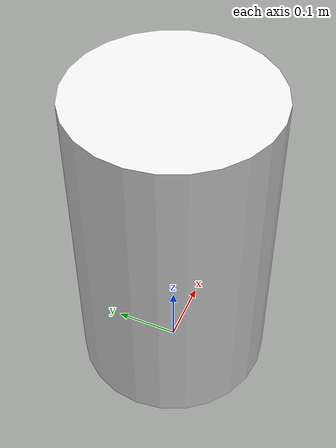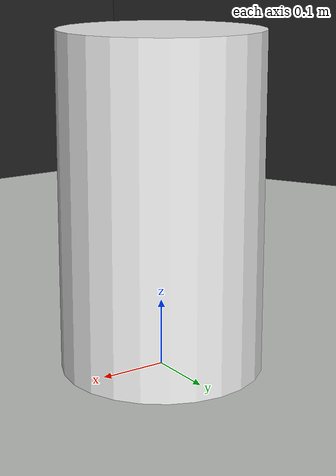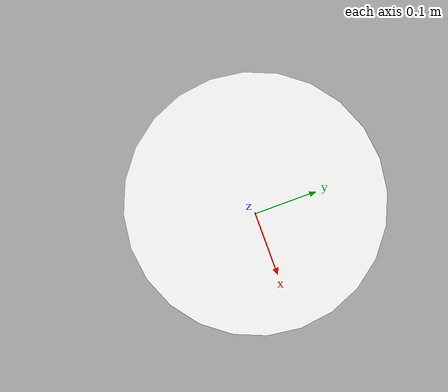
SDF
<sdf version='1.5'>
    <!-- Draw Circle -->
    <model name='ros_symbol'>
      <static>1</static>
      <link name='symbol'>

        <collision name='two_two'>
          <pose>0 0 0.25 0 0 0</pose>
          <geometry>
            <cylinder>
              <radius>0.15</radius>
              <length>0.5</length>
            </cylinder>
          </geometry>
          <max_contacts>10</max_contacts>
          <surface>
            <bounce/>
            <friction>
              <ode/>
            </friction>
            <contact>
              <ode/>
            </contact>
          </surface>
        </collision>

        <visual name='two_two'>
          <pose>0 0 0.25 0 0 0</pose>
          <geometry>
            <cylinder>
              <radius>0.15</radius>
              <length>0.5</length>
            </cylinder>
          </geometry>
          <material>
            <script>
              <uri>file://media/materials/scripts/gazebo.material</uri>
              <name>Gazebo/White</name>
            </script>
          </material>
        </visual>

        <!-- Draw Wall -->
        <collision name='body'>
        <pose>0 0 -0.3 0 0 -1.5708</pose>
        <geometry>
          <mesh>
            <uri>model://turtlebot3_world/meshes/wall.dae</uri>
            <scale>0.25 0.25 0.25</scale>
          </mesh>
        </geometry>
        <max_contacts>10</max_contacts>
        <surface>
          <bounce/>
          <friction>
            <ode/>
          </friction>
          <contact>
            <ode/>
          </contact>
        </surface>
      </collision>

      <visual name='body'>
        <pose>0 0 -0.3 0 0 -1.5708</pose>
        <geometry>
          <mesh>
            <uri>model://turtlebot3_world/meshes/wall.dae</uri>
            <scale>0.25 0.25 0.25</scale>
          </mesh>
        </geometry>
        <material>
          <script>
            <uri>file://media/materials/scripts/gazebo.material</uri>
            <name>Gazebo/FlatBlack</name>
          </script>
        </material>
      </visual>
    </link>
  </model>
</sdf>
